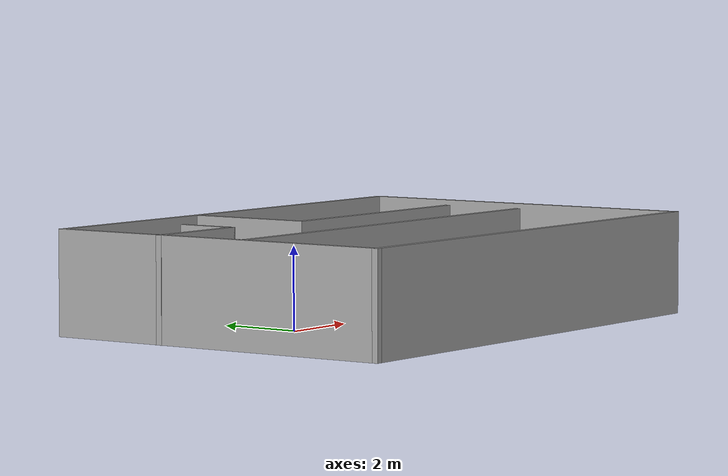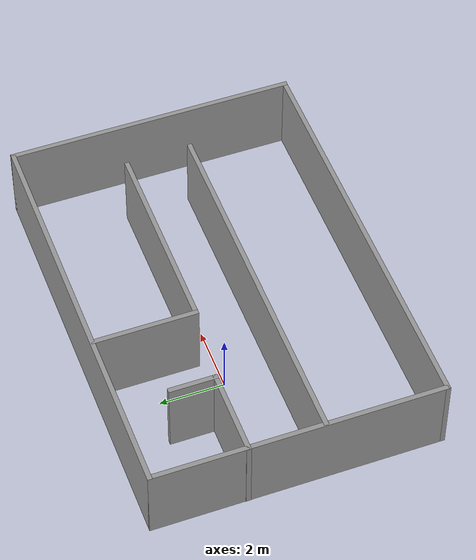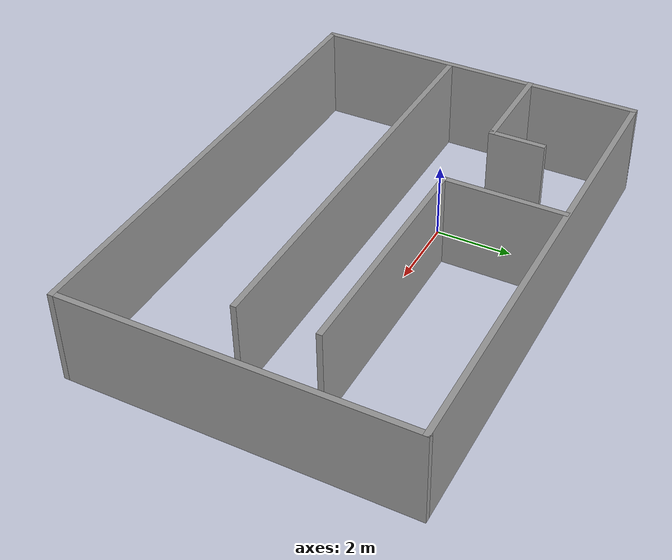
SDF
<?xml version='1.0'?>
<sdf version='1.7'>
  <model name='room'>
    <pose>2.30418 -0.768589 0 0 -0 0</pose>
    <link name='Wall_1'>
      <collision name='Wall_1_Collision'>
        <geometry>
          <box>
            <size>9 0.15 2.5</size>
          </box>
        </geometry>
        <pose>0 0 1.25 0 -0 0</pose>
      </collision>
      <visual name='Wall_1_Visual'>
        <pose>0 0 1.25 0 -0 0</pose>
        <geometry>
          <box>
            <size>9 0.15 2.5</size>
          </box>
        </geometry>
        <material>
          <script>
            <uri>file://media/materials/scripts/gazebo.material</uri>
            <name>Gazebo/Grey</name>
          </script>
          <ambient>1 1 1 1</ambient>
        </material>
        <meta>
          <layer>0</layer>
        </meta>
      </visual>
      <pose>-6.29407 -0 0 0 -0 1.5708</pose>
    </link>
    <link name='Wall_11'>
      <collision name='Wall_11_Collision'>
        <geometry>
          <box>
            <size>3.25 0.15 2.5</size>
          </box>
        </geometry>
        <pose>0 0 1.25 0 -0 0</pose>
      </collision>
      <visual name='Wall_11_Visual'>
        <pose>0 0 1.25 0 -0 0</pose>
        <geometry>
          <box>
            <size>3.25 0.15 2.5</size>
          </box>
        </geometry>
        <material>
          <script>
            <uri>file://media/materials/scripts/gazebo.material</uri>
            <name>Gazebo/Grey</name>
          </script>
          <ambient>1 1 1 1</ambient>
        </material>
        <meta>
          <layer>0</layer>
        </meta>
      </visual>
      <pose>-1.32989 2.82962 0 0 -0 -1.5708</pose>
    </link>
    <link name='Wall_12'>
      <collision name='Wall_12_Collision'>
        <geometry>
          <box>
            <size>6.25 0.15 2.5</size>
          </box>
        </geometry>
        <pose>0 0 1.25 0 -0 0</pose>
      </collision>
      <visual name='Wall_12_Visual'>
        <pose>0 0 1.25 0 -0 0</pose>
        <geometry>
          <box>
            <size>6.25 0.15 2.5</size>
          </box>
        </geometry>
        <material>
          <script>
            <uri>file://media/materials/scripts/gazebo.material</uri>
            <name>Gazebo/Grey</name>
          </script>
          <ambient>1 1 1 1</ambient>
        </material>
        <meta>
          <layer>0</layer>
        </meta>
      </visual>
      <pose>1.72011 1.27962 0 0 -0 0</pose>
    </link>
    <link name='Wall_2'>
      <collision name='Wall_2_Collision'>
        <geometry>
          <box>
            <size>12.75 0.15 2.5</size>
          </box>
        </geometry>
        <pose>0 0 1.25 0 -0 0</pose>
      </collision>
      <visual name='Wall_2_Visual'>
        <pose>0 0 1.25 0 -0 0</pose>
        <geometry>
          <box>
            <size>12.75 0.15 2.5</size>
          </box>
        </geometry>
        <material>
          <script>
            <uri>file://media/materials/scripts/gazebo.material</uri>
            <name>Gazebo/Grey</name>
          </script>
          <ambient>1 1 1 1</ambient>
        </material>
        <meta>
          <layer>0</layer>
        </meta>
      </visual>
      <pose>0.005929 4.425 0 0 -0 0</pose>
    </link>
    <link name='Wall_3'>
      <collision name='Wall_3_Collision'>
        <geometry>
          <box>
            <size>9 0.15 2.5</size>
          </box>
        </geometry>
        <pose>0 0 1.25 0 -0 0</pose>
      </collision>
      <visual name='Wall_3_Visual'>
        <pose>0 0 1.25 0 -0 0</pose>
        <geometry>
          <box>
            <size>9 0.15 2.5</size>
          </box>
        </geometry>
        <material>
          <script>
            <uri>file://media/materials/scripts/gazebo.material</uri>
            <name>Gazebo/Grey</name>
          </script>
          <ambient>1 1 1 1</ambient>
        </material>
        <meta>
          <layer>0</layer>
        </meta>
      </visual>
      <pose>6.30593 -0 0 0 -0 -1.5708</pose>
    </link>
    <link name='Wall_4'>
      <collision name='Wall_4_Collision'>
        <geometry>
          <box>
            <size>12.75 0.15 2.5</size>
          </box>
        </geometry>
        <pose>0 0 1.25 0 -0 0</pose>
      </collision>
      <visual name='Wall_4_Visual'>
        <pose>0 0 1.25 0 -0 0</pose>
        <geometry>
          <box>
            <size>12.75 0.15 2.5</size>
          </box>
        </geometry>
        <material>
          <script>
            <uri>file://media/materials/scripts/gazebo.material</uri>
            <name>Gazebo/Grey</name>
          </script>
          <ambient>1 1 1 1</ambient>
        </material>
        <meta>
          <layer>0</layer>
        </meta>
      </visual>
      <pose>0.005929 -4.425 0 0 -0 3.14159</pose>
    </link>
    <link name='Wall_6'>
      <collision name='Wall_6_Collision'>
        <geometry>
          <box>
            <size>2.75 0.15 2.5</size>
          </box>
        </geometry>
        <pose>0 0 1.25 0 -0 0</pose>
      </collision>
      <visual name='Wall_6_Visual'>
        <pose>0 0 1.25 0 -0 0</pose>
        <geometry>
          <box>
            <size>2.75 0.15 2.5</size>
          </box>
        </geometry>
        <material>
          <script>
            <uri>file://media/materials/scripts/gazebo.material</uri>
            <name>Gazebo/Grey</name>
          </script>
          <ambient>1 1 1 1</ambient>
        </material>
        <meta>
          <layer>0</layer>
        </meta>
      </visual>
      <pose>-5.00593 1.54773 0 0 -0 0</pose>
    </link>
    <link name='Wall_7'>
      <collision name='Wall_7_Collision'>
        <geometry>
          <box>
            <size>1.5 0.15 2.5</size>
          </box>
        </geometry>
        <pose>0 0 1.25 0 -0 0</pose>
      </collision>
      <visual name='Wall_7_Visual'>
        <pose>0 0 1.25 0 -0 0</pose>
        <geometry>
          <box>
            <size>1.5 0.15 2.5</size>
          </box>
        </geometry>
        <material>
          <script>
            <uri>file://media/materials/scripts/gazebo.material</uri>
            <name>Gazebo/Grey</name>
          </script>
          <ambient>1 1 1 1</ambient>
        </material>
        <meta>
          <layer>0</layer>
        </meta>
      </visual>
      <pose>-3.70593 2.22273 0 0 -0 1.5708</pose>
    </link>
    <link name='Wall_9'>
      <collision name='Wall_9_Collision'>
        <geometry>
          <box>
            <size>11.25 0.15 2.5</size>
          </box>
        </geometry>
        <pose>0 0 1.25 0 -0 0</pose>
      </collision>
      <visual name='Wall_9_Visual'>
        <pose>0 0 1.25 0 -0 0</pose>
        <geometry>
          <box>
            <size>11.25 0.15 2.5</size>
          </box>
        </geometry>
        <material>
          <script>
            <uri>file://media/materials/scripts/gazebo.material</uri>
            <name>Gazebo/Grey</name>
          </script>
          <ambient>1 1 1 1</ambient>
        </material>
        <meta>
          <layer>0</layer>
        </meta>
      </visual>
      <pose>-0.715474 -0.758235 0 0 -0 0</pose>
    </link>
    <static>1</static>
  </model>
</sdf>
